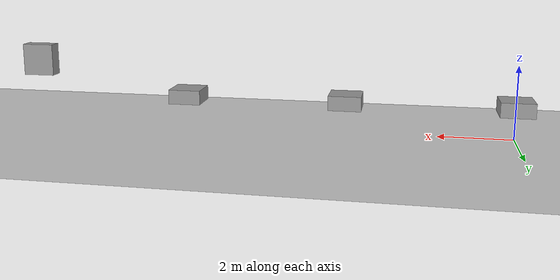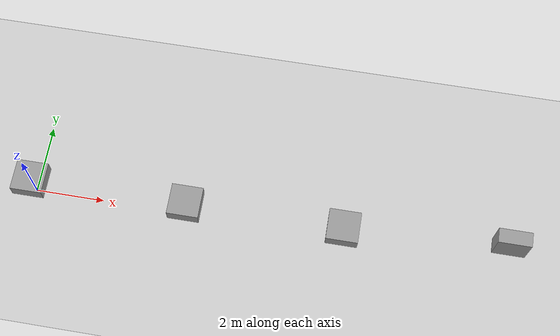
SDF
<?xml version="1.0" ?>
<!-- this file was generated using embedded ruby -->
<sdf version='1.6'>
  <world name='default'>
    <include>
      <uri>model://sun</uri>
    </include>
    <include>
      <uri>model://ground_plane</uri>
    </include>
    <gravity>0 0 -9.81</gravity>

    <!-- model pose rotation -->
    <model name='box_0'>
      <pose>0 0 0.9 1.5707963267948966 -0 0</pose>
      <link name='link_1'>
        <inertial>
          <mass>10</mass>
          <inertia>
            <ixx>0.8083333333333335</ixx>
            <ixy>0</ixy>
            <ixz>0</ixz>
            <iyy>1.35</iyy>
            <iyz>0</iyz>
            <izz>0.8083333333333335</izz>
          </inertia>
        </inertial>
        <collision name='collision'>
          <geometry>
            <box>
              <size>0.9 0.4 0.9</size>
            </box>
          </geometry>
        </collision>
        <visual name='visual'>
          <geometry>
            <box>
              <size>0.9 0.4 0.9</size>
            </box>
          </geometry>
          <material>
            <script>
              <name>Gazebo/Grey</name>
              <uri>file://media/materials/scripts/gazebo.material</uri>
            </script>
          </material>
        </visual>
      </link>
    </model>
    <!-- link pose rotation -->
    <model name='box_1'>
      <pose>4.5 0 0.9 0 -0 0</pose>
      <link name='link_1'>
        <pose>0 0 0 1.5707963267948966 -0 0</pose>
        <inertial>
          <mass>10</mass>
          <inertia>
            <ixx>0.8083333333333335</ixx>
            <ixy>0</ixy>
            <ixz>0</ixz>
            <iyy>1.35</iyy>
            <iyz>0</iyz>
            <izz>0.8083333333333335</izz>
          </inertia>
        </inertial>
        <collision name='collision'>
          <geometry>
            <box>
              <size>0.9 0.4 0.9</size>
            </box>
          </geometry>
        </collision>
        <visual name='visual'>
          <geometry>
            <box>
              <size>0.9 0.4 0.9</size>
            </box>
          </geometry>
          <material>
            <script>
              <name>Gazebo/Grey</name>
              <uri>file://media/materials/scripts/gazebo.material</uri>
            </script>
          </material>
        </visual>
      </link>
    </model>
    <!-- collision pose rotation -->
    <model name='box_2'>
      <pose>9 0 0.9 0 -0 0</pose>
      <link name='link_1'>
        <inertial>
          <mass>10</mass>
          <inertia>
            <ixx>0.8083333333333335</ixx>
            <ixy>0</ixy>
            <ixz>0</ixz>
            <iyy>1.35</iyy>
            <iyz>0</iyz>
            <izz>0.8083333333333335</izz>
          </inertia>
        </inertial>
        <collision name='collision'>
          <geometry>
            <box>
              <size>0.9 0.4 0.9</size>
            </box>
          </geometry>
          <pose>0 0 0 1.5707963267948966 -0 0</pose>
        </collision>
        <visual name='visual'>
          <geometry>
            <box>
              <size>0.9 0.4 0.9</size>
            </box>
          </geometry>
          <pose>0 0 0 1.5707963267948966 -0 0</pose>
          <material>
            <script>
              <name>Gazebo/Grey</name>
              <uri>file://media/materials/scripts/gazebo.material</uri>
            </script>
          </material>
        </visual>
      </link>
    </model>
    <!-- collision pose translation -->
    <model name='box_3'>
      <pose>13.5 0 0.9 0 -0 0</pose>
      <link name='link_1'>
        <inertial>
          <mass>10</mass>
          <inertia>
            <ixx>0.8083333333333335</ixx>
            <ixy>0</ixy>
            <ixz>0</ixz>
            <iyy>1.35</iyy>
            <iyz>0</iyz>
            <izz>0.8083333333333335</izz>
          </inertia>
        </inertial>
        <collision name='collision'>
          <geometry>
            <box>
              <size>0.9 0.4 0.9</size>
            </box>
          </geometry>
          <pose>0 0 0.9 0 -0 0</pose>
        </collision>
        <visual name='visual'>
          <geometry>
            <box>
              <size>0.9 0.4 0.9</size>
            </box>
          </geometry>
          <pose>0 0 0.9 0 -0 0</pose>
          <material>
            <script>
              <name>Gazebo/Grey</name>
              <uri>file://media/materials/scripts/gazebo.material</uri>
            </script>
          </material>
        </visual>
      </link>
    </model>
    <gui fullscreen='0'>
      <camera name='user_camera'>
        <pose>6 -12 12  0 0.75 1.5707963267948966</pose>
        <view_controller>orbit</view_controller>
        <projection_type>perspective</projection_type>
      </camera>
    </gui>
  </world>
</sdf>
